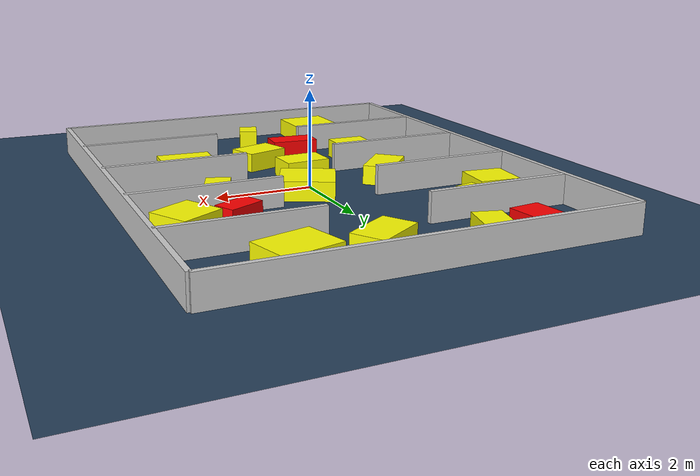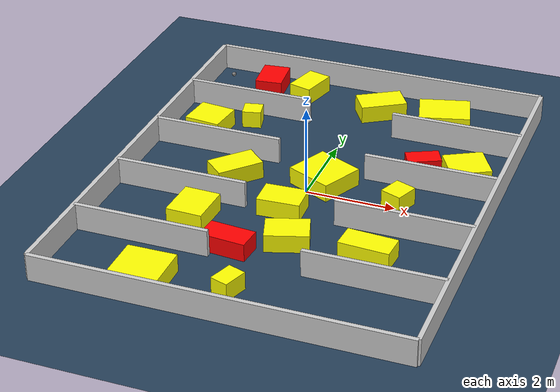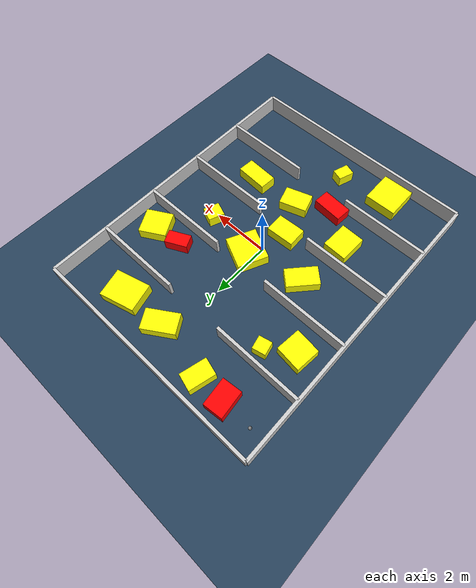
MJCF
<?xml version="1.0" ?>
<mujoco model="generated_environment">
  <option timestep="0.01" integrator="RK4" cone="elliptic"/>
  <default>
    <geom density="1"/>
  </default>
  <asset>
    <texture builtin="gradient" height="3072" rgb1="0.3 0.5 0.7" rgb2="0 0 0" type="skybox" width="512"/>
    <texture builtin="checker" height="300" mark="edge" markrgb="0.8 0.8 0.8" name="groundplane" rgb1="0.2 0.3 0.4" rgb2="0.1 0.2 0.3" type="2d" width="300"/>
    <material name="groundplane" reflectance="0.2" texrepeat="5 5" texture="groundplane" texuniform="true"/>
    <material name="robot" rgba="0.0 1.0 0.0 1"/>
  </asset>
  <worldbody>
    <light dir="0 0 -1" directional="true" pos="0 0 1.5"/>
    <geom condim="4" friction="1.0 0.005 0.001" material="groundplane" name="floor" size="0 0 0.05" type="plane"/>
    <body name="walls">
      <geom name="wall_1" condim="4" pos="-4.0 0.0 0.3" rgba="0.800000011920929 0.800000011920929 0.800000011920929 1.0" size="0.05 5.0 0.3" type="box"/>
      <geom name="wall_2" condim="4" pos="4.0 0.0 0.3" rgba="0.800000011920929 0.800000011920929 0.800000011920929 1.0" size="0.05 5.0 0.3" type="box"/>
      <geom name="wall_3" condim="4" pos="0.0 -5.0 0.3" rgba="0.800000011920929 0.800000011920929 0.800000011920929 1.0" size="4.0 0.05 0.3" type="box"/>
      <geom name="wall_4" condim="4" pos="0.0 5.0 0.3" rgba="0.800000011920929 0.800000011920929 0.800000011920929 1.0" size="4.0 0.05 0.3" type="box"/>
      <geom name="wall_5" condim="4" pos="-2.5 -3.0 0.3" rgba="0.800000011920929 0.800000011920929 0.800000011920929 1.0" size="1.5 0.05 0.3" type="box"/>
      <geom name="wall_6" condim="4" pos="2.5 -3.0 0.3" rgba="0.800000011920929 0.800000011920929 0.800000011920929 1.0" size="1.5 0.05 0.3" type="box"/>
      <geom name="wall_7" condim="4" pos="-2.5 -1.0 0.3" rgba="0.800000011920929 0.800000011920929 0.800000011920929 1.0" size="1.5 0.05 0.3" type="box"/>
      <geom name="wall_8" condim="4" pos="2.5 -1.0 0.3" rgba="0.800000011920929 0.800000011920929 0.800000011920929 1.0" size="1.5 0.05 0.3" type="box"/>
      <geom name="wall_9" condim="4" pos="-2.5 1.0 0.3" rgba="0.800000011920929 0.800000011920929 0.800000011920929 1.0" size="1.5 0.05 0.3" type="box"/>
      <geom name="wall_10" condim="4" pos="2.5 1.0 0.3" rgba="0.800000011920929 0.800000011920929 0.800000011920929 1.0" size="1.5 0.05 0.3" type="box"/>
      <geom name="wall_11" condim="4" pos="-2.5 3.0 0.3" rgba="0.800000011920929 0.800000011920929 0.800000011920929 1.0" size="1.5 0.05 0.3" type="box"/>
      <geom name="wall_12" condim="4" pos="2.5 3.0 0.3" rgba="0.800000011920929 0.800000011920929 0.800000011920929 1.0" size="1.5 0.05 0.3" type="box"/>
    </body>
    <body name="robot">
      <joint name="joint_x" type="slide" pos="0 0 0" axis="1 0 0"/>
      <joint name="joint_y" type="slide" pos="0 0 0" axis="0 1 0"/>
      <geom name="robot" type="sphere" pos="-3.4818520572500824 4.315195431839896 0.2" size="0.05" mass="5." friction="1.0 0.005 0.0001" condim="4"/>
      <site name="sensor_ball"/>
    </body>
    <body name="obstacle_1_movable">
      <geom name="obstacle_1_movable" condim="4" pos="2.017567117878813 0.16843420232197648 0.2" euler="0 0 158.45013545687846" friction="1.0 0.005 0.001" rgba="1 1 0 1" size="0.24551315040402952 0.2721746313528376 0.2" type="box" mass="0.1"/>
      <joint type="free"/>
    </body>
    <body name="obstacle_2_static">
      <geom name="obstacle_2_static" condim="4" pos="2.1207643897908675 1.6842119631107053 0.2" euler="0 0 295.6395584704474" friction="1.0 0.005 0.001" rgba="1 0 0 1" size="0.22353661436218975 0.37897043901280814 0.2" type="box"/>
    </body>
    <body name="obstacle_3_movable">
      <geom name="obstacle_3_movable" condim="4" pos="-1.4886614853160665 4.2788466591362315 0.2" euler="0 0 75.06664391661715" friction="1.0 0.005 0.001" rgba="1 1 0 1" size="0.43141569096865484 0.28032327889907743 0.2" type="box" mass="0.1"/>
      <joint type="free"/>
    </body>
    <body name="obstacle_4_movable">
      <geom name="obstacle_4_movable" condim="4" pos="-0.2100917249615346 -0.8864473293987936 0.2" euler="0 0 2.573170264982023" friction="1.0 0.005 0.001" rgba="1 1 0 1" size="0.4759718963270469 0.3323973962855812 0.2" type="box" mass="0.1"/>
      <joint type="free"/>
    </body>
    <body name="obstacle_5_static">
      <geom name="obstacle_5_static" condim="4" pos="-2.4412994870158116 4.274091636504783 0.2" euler="0 0 96.18018832729707" friction="1.0 0.005 0.001" rgba="1 0 0 1" size="0.43656514205831143 0.3204627676756111 0.2" type="box"/>
    </body>
    <body name="obstacle_6_movable">
      <geom name="obstacle_6_movable" condim="4" pos="-1.8692183460324854 -1.7786875556197224 0.2" euler="0 0 178.03476638105496" friction="1.0 0.005 0.001" rgba="1 1 0 1" size="0.40460523658821723 0.4758407129278032 0.2" type="box" mass="0.1"/>
      <joint type="free"/>
    </body>
    <body name="obstacle_7_movable">
      <geom name="obstacle_7_movable" condim="4" pos="-2.245563773145432 2.4843215499547346 0.2" euler="0 0 102.84866088001615" friction="1.0 0.005 0.001" rgba="1 1 0 1" size="0.2158741830450461 0.21778053432758512 0.2" type="box" mass="0.1"/>
      <joint type="free"/>
    </body>
    <body name="obstacle_8_movable">
      <geom name="obstacle_8_movable" condim="4" pos="-3.07670434361073 1.9042129328463115 0.2" euler="0 0 83.76642154399391" friction="1.0 0.005 0.001" rgba="1 1 0 1" size="0.40851503212788576 0.4220905867179876 0.2" type="box" mass="0.1"/>
      <joint type="free"/>
    </body>
    <body name="obstacle_9_movable">
      <geom name="obstacle_9_movable" condim="4" pos="3.100817402751066 1.7334142513731159 0.2" euler="0 0 209.2128602520193" friction="1.0 0.005 0.001" rgba="1 1 0 1" size="0.45796452655831327 0.4292556435907504 0.2" type="box" mass="0.1"/>
      <joint type="free"/>
    </body>
    <body name="obstacle_10_movable">
      <geom name="obstacle_10_movable" condim="4" pos="2.047630577115087 -1.9644713457576457 0.2" euler="0 0 176.29197665232854" friction="1.0 0.005 0.001" rgba="1 1 0 1" size="0.5572299087853134 0.2862857771720709 0.2" type="box" mass="0.1"/>
      <joint type="free"/>
    </body>
    <body name="obstacle_11_movable">
      <geom name="obstacle_11_movable" condim="4" pos="0.2530679719909985 0.4499774344942775 0.2" euler="0 0 334.6074642455953" friction="1.0 0.005 0.001" rgba="1 1 0 1" size="0.5540625413262394 0.5100893299686333 0.2" type="box" mass="0.1"/>
      <joint type="free"/>
    </body>
    <body name="obstacle_12_movable">
      <geom name="obstacle_12_movable" condim="4" pos="0.3371468721908779 -2.0456327589519856 0.2" euler="0 0 197.93907170992026" friction="1.0 0.005 0.001" rgba="1 1 0 1" size="0.46809626545980637 0.3357106594991266 0.2" type="box" mass="0.1"/>
      <joint type="free"/>
    </body>
    <body name="obstacle_13_movable">
      <geom name="obstacle_13_movable" condim="4" pos="-0.13382841827781844 -4.0366419388823775 0.2" euler="0 0 71.32562256048703" friction="1.0 0.005 0.001" rgba="1 1 0 1" size="0.27678151952842234 0.20210499045784022 0.2" type="box" mass="0.1"/>
      <joint type="free"/>
    </body>
    <body name="obstacle_14_movable">
      <geom name="obstacle_14_movable" condim="4" pos="0.42862914453723944 3.9308450287990606 0.2" euler="0 0 122.07218203234024" friction="1.0 0.005 0.001" rgba="1 1 0 1" size="0.33275505486606843 0.5426317238558679 0.2" type="box" mass="0.1"/>
      <joint type="free"/>
    </body>
    <body name="obstacle_15_movable">
      <geom name="obstacle_15_movable" condim="4" pos="-1.683987977211729 0.05834616421983441 0.2" euler="0 0 137.48082797640845" friction="1.0 0.005 0.001" rgba="1 1 0 1" size="0.31400341074577737 0.5329593457024121 0.2" type="box" mass="0.1"/>
      <joint type="free"/>
    </body>
    <body name="obstacle_16_static">
      <geom name="obstacle_16_static" condim="4" pos="-0.7241908052934689 -2.6553085889459576 0.2" euler="0 0 175.08168033479572" friction="1.0 0.005 0.001" rgba="1 0 0 1" size="0.5111476763810017 0.27308511024598225 0.2" type="box"/>
    </body>
    <body name="obstacle_17_movable">
      <geom name="obstacle_17_movable" condim="4" pos="-1.8755913297604718 -4.303630253473116 0.2" euler="0 0 270.61078843810037" friction="1.0 0.005 0.001" rgba="1 1 0 1" size="0.5675096236129222 0.5392305265087058 0.2" type="box" mass="0.1"/>
      <joint type="free"/>
    </body>
    <body name="obstacle_18_movable">
      <geom name="obstacle_18_movable" condim="4" pos="1.967266199375564 3.9762427985184203 0.2" euler="0 0 14.834486436338747" friction="1.0 0.005 0.001" rgba="1 1 0 1" size="0.5901853328406133 0.4605059632706857 0.2" type="box" mass="0.1"/>
      <joint type="free"/>
    </body>
  </worldbody>
  <actuator>
    <motor name="actuator_x" joint="joint_x" gear="1" ctrlrange="-1 1"/>
    <motor name="actuator_y" joint="joint_y" gear="1" ctrlrange="-1 1"/>
  </actuator>
</mujoco>
